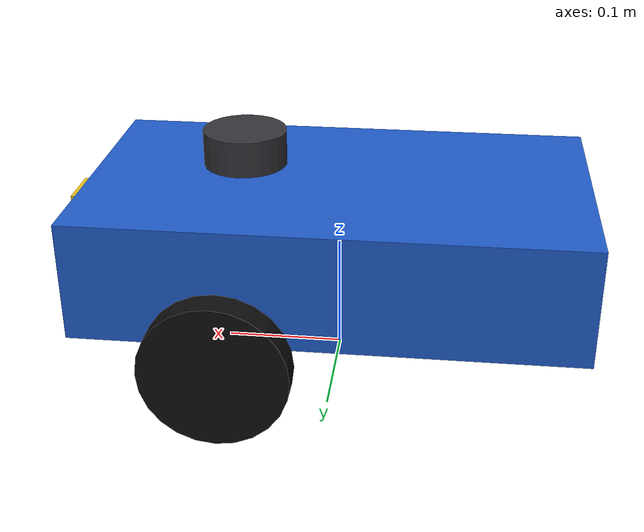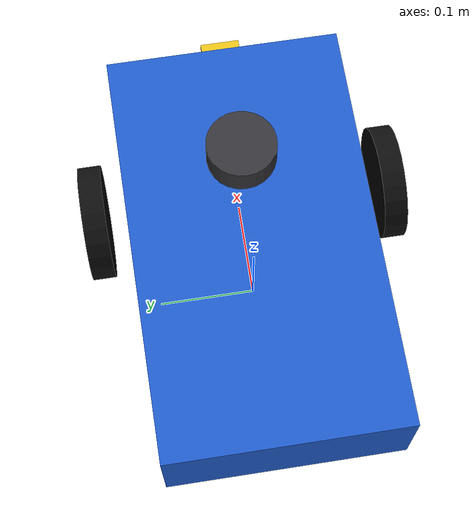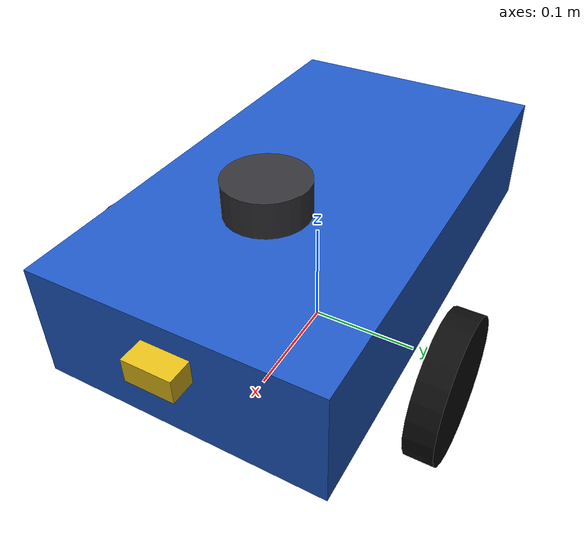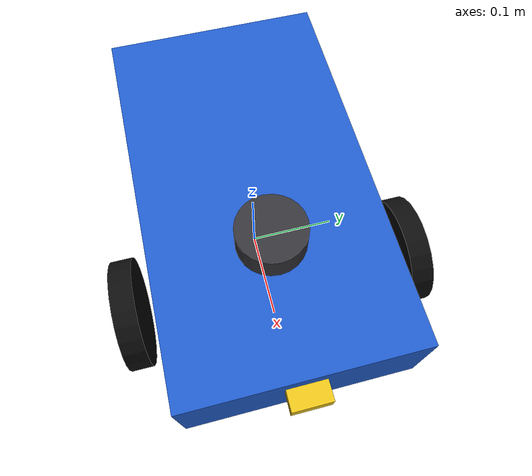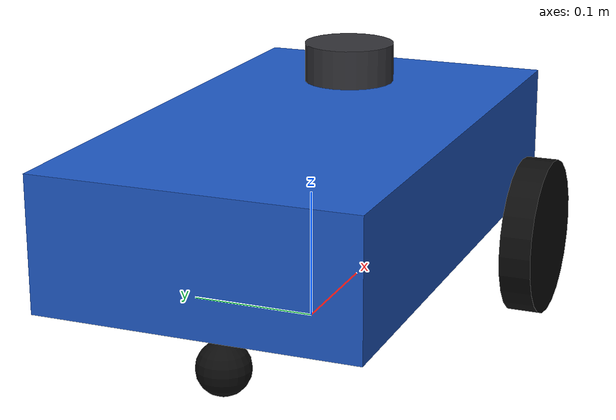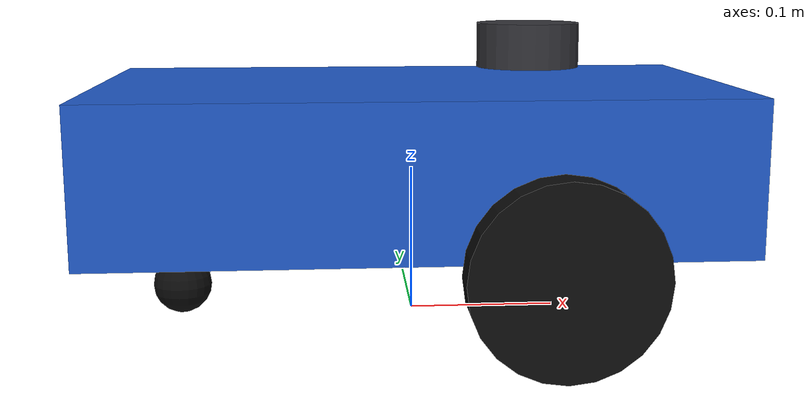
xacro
<?xml version="1.0"?>
<robot xmlns:xacro="http://www.ros.org/wiki/xacro" name="virtual_robot">
  <!-- Differential-drive robot. Lidar sits on the chassis and looks along +x. -->
  <xacro:property name="M_PI" value="3.1415926535897931"/>
  <xacro:property name="wheel_radius" value="0.06"/>
  <xacro:property name="wheel_width" value="0.024"/>
  <xacro:property name="wheel_separation" value="0.31"/>
  <xacro:property name="body_length" value="0.42"/>
  <xacro:property name="body_width" value="0.24"/>
  <xacro:property name="body_height" value="0.10"/>
  <xacro:property name="body_z" value="0.11"/>

  <material name="blue">
    <color rgba="0.12 0.35 0.78 1"/>
  </material>
  <material name="black">
    <color rgba="0.05 0.05 0.05 1"/>
  </material>
  <material name="dark">
    <color rgba="0.2 0.2 0.22 1"/>
  </material>
  <material name="yellow">
    <color rgba="0.9 0.75 0.1 1"/>
  </material>

  <link name="base_footprint"/>

  <joint name="base_joint" type="fixed">
    <parent link="base_footprint"/>
    <child link="base_link"/>
    <origin xyz="0 0 ${body_z}" rpy="0 0 0"/>
  </joint>

  <link name="base_link">
    <inertial>
      <origin xyz="0 0 0" rpy="0 0 0"/>
      <mass value="3.5"/>
      <inertia ixx="0.01972" ixy="0" ixz="0" iyy="0.05437" iyz="0" izz="0.06825"/>
    </inertial>
    <visual>
      <origin xyz="0 0 0" rpy="0 0 0"/>
      <geometry>
        <box size="${body_length} ${body_width} ${body_height}"/>
      </geometry>
      <material name="blue"/>
    </visual>
    <collision>
      <origin xyz="0 0 0" rpy="0 0 0"/>
      <geometry>
        <box size="${body_length} ${body_width} ${body_height}"/>
      </geometry>
    </collision>
  </link>

  <link name="lidar_link">
    <inertial>
      <mass value="0.1"/>
      <inertia ixx="0.00005" ixy="0" ixz="0" iyy="0.00005" iyz="0" izz="0.00005"/>
    </inertial>
    <visual>
      <geometry>
        <cylinder radius="0.035" length="0.03"/>
      </geometry>
      <material name="dark"/>
    </visual>
    <collision>
      <geometry>
        <cylinder radius="0.035" length="0.03"/>
      </geometry>
    </collision>
  </link>

  <joint name="lidar_joint" type="fixed">
    <parent link="base_link"/>
    <child link="lidar_link"/>
    <origin xyz="0.08 0 0.075" rpy="0 0 0"/>
  </joint>

  <!-- Small marker so the front of the robot is obvious in Gazebo. -->
  <link name="front_marker">
    <visual>
      <geometry>
        <box size="0.04 0.04 0.02"/>
      </geometry>
      <material name="yellow"/>
    </visual>
  </link>
  <joint name="front_marker_joint" type="fixed">
    <parent link="base_link"/>
    <child link="front_marker"/>
    <origin xyz="0.21 0 0.02" rpy="0 0 0"/>
  </joint>

  <xacro:macro name="wheel" params="prefix reflect">
    <link name="${prefix}_wheel_link">
      <inertial>
        <mass value="0.25"/>
        <inertia ixx="0.000237" ixy="0" ixz="0" iyy="0.00045" iyz="0" izz="0.000237"/>
      </inertial>
      <visual>
        <origin xyz="0 0 0" rpy="${M_PI/2} 0 0"/>
        <geometry>
          <cylinder radius="${wheel_radius}" length="${wheel_width}"/>
        </geometry>
        <material name="black"/>
      </visual>
      <collision>
        <origin xyz="0 0 0" rpy="${M_PI/2} 0 0"/>
        <geometry>
          <cylinder radius="${wheel_radius}" length="${wheel_width}"/>
        </geometry>
      </collision>
    </link>
    <joint name="${prefix}_wheel_joint" type="continuous">
      <parent link="base_link"/>
      <child link="${prefix}_wheel_link"/>
      <origin xyz="0.08 ${reflect * wheel_separation / 2} ${-body_z + wheel_radius}" rpy="0 0 0"/>
      <axis xyz="0 1 0"/>
    </joint>
  </xacro:macro>

  <xacro:wheel prefix="left" reflect="1"/>
  <xacro:wheel prefix="right" reflect="-1"/>

  <link name="caster_link">
    <inertial>
      <mass value="0.15"/>
      <inertia ixx="0.000024" ixy="0" ixz="0" iyy="0.000024" iyz="0" izz="0.000024"/>
    </inertial>
    <visual>
      <geometry>
        <sphere radius="0.02"/>
      </geometry>
      <material name="black"/>
    </visual>
    <collision>
      <geometry>
        <sphere radius="0.02"/>
      </geometry>
    </collision>
  </link>
  <joint name="caster_joint" type="fixed">
    <parent link="base_link"/>
    <child link="caster_link"/>
    <origin xyz="-0.16 0 ${-body_z + 0.02}" rpy="0 0 0"/>
  </joint>

  <gazebo>
    <self_collide>false</self_collide>
  </gazebo>
  <gazebo reference="base_link">
    <material>Gazebo/Blue</material>
    <mu1>0.2</mu1>
    <mu2>0.2</mu2>
  </gazebo>
  <gazebo reference="left_wheel_link">
    <material>Gazebo/Black</material>
    <mu1>1.0</mu1>
    <mu2>1.0</mu2>
    <kp>1000000.0</kp>
    <kd>100.0</kd>
    <minDepth>0.001</minDepth>
    <fdir1>1 0 0</fdir1>
  </gazebo>
  <gazebo reference="right_wheel_link">
    <material>Gazebo/Black</material>
    <mu1>1.0</mu1>
    <mu2>1.0</mu2>
    <kp>1000000.0</kp>
    <kd>100.0</kd>
    <minDepth>0.001</minDepth>
    <fdir1>1 0 0</fdir1>
  </gazebo>
  <gazebo reference="caster_link">
    <mu1>0.0</mu1>
    <mu2>0.0</mu2>
    <kp>1000000.0</kp>
    <kd>100.0</kd>
  </gazebo>
  <gazebo reference="lidar_link">
    <material>Gazebo/DarkGrey</material>
  </gazebo>

  <gazebo>
    <plugin name="diff_drive" filename="libgazebo_ros_diff_drive.so">
      <ros>
        <remapping>cmd_vel:=cmd_vel</remapping>
        <remapping>odom:=odom</remapping>
      </ros>
      <update_rate>30</update_rate>
      <left_joint>left_wheel_joint</left_joint>
      <right_joint>right_wheel_joint</right_joint>
      <wheel_separation>${wheel_separation}</wheel_separation>
      <wheel_diameter>${wheel_radius * 2}</wheel_diameter>
      <max_wheel_torque>20</max_wheel_torque>
      <max_wheel_acceleration>2.0</max_wheel_acceleration>
      <odometry_frame>odom</odometry_frame>
      <robot_base_frame>base_footprint</robot_base_frame>
      <publish_odom>true</publish_odom>
      <publish_odom_tf>true</publish_odom_tf>
      <publish_wheel_tf>false</publish_wheel_tf>
    </plugin>
  </gazebo>

  <gazebo reference="lidar_link">
    <sensor type="ray" name="lidar">
      <pose>0 0 0 0 0 0</pose>
      <visualize>true</visualize>
      <update_rate>8</update_rate>
      <ray>
        <scan>
          <horizontal>
            <samples>360</samples>
            <resolution>1</resolution>
            <min_angle>${-M_PI}</min_angle>
            <max_angle>${M_PI}</max_angle>
          </horizontal>
        </scan>
        <range>
          <min>0.12</min>
          <max>8.0</max>
          <resolution>0.01</resolution>
        </range>
        <noise>
          <type>gaussian</type>
          <mean>0.0</mean>
          <stddev>0.005</stddev>
        </noise>
      </ray>
      <plugin name="gazebo_ros_lidar" filename="libgazebo_ros_ray_sensor.so">
        <ros>
          <remapping>~/out:=/scan</remapping>
        </ros>
        <output_type>sensor_msgs/LaserScan</output_type>
        <frame_name>lidar_link</frame_name>
      </plugin>
    </sensor>
  </gazebo>
</robot>
